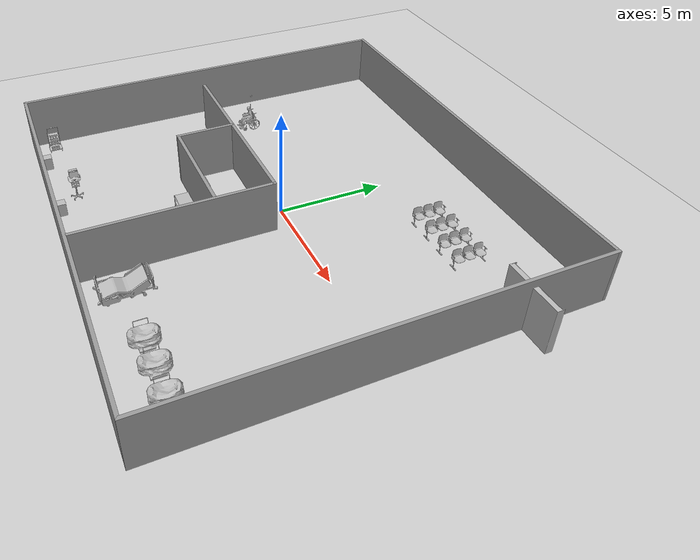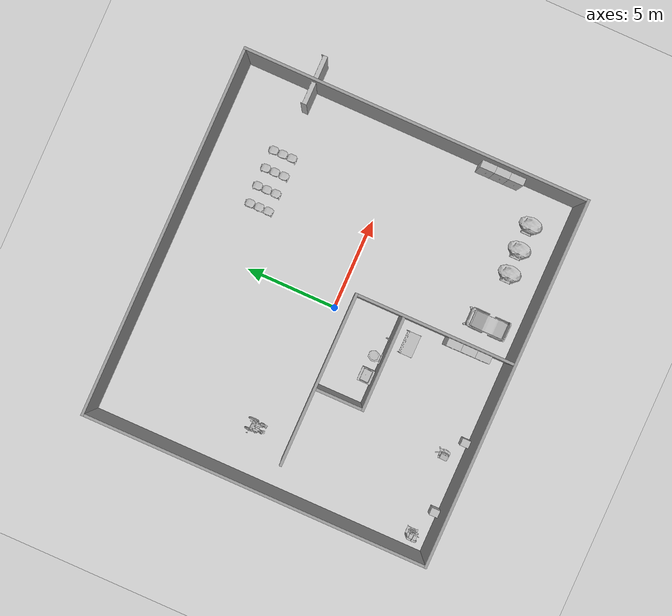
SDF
<sdf version="1.7">
 <world name="default">
  <light name="sun" type="directional">
   <pose>0 0 10 0 -0 0</pose>
   <diffuse>0.8 0.8 0.8 1</diffuse>
   <specular>0.2 0.2 0.2 1</specular>
   <attenuation>
    <range>1000</range>
    <constant>0.9</constant>
    <linear>0.01</linear>
    <quadratic>0.001</quadratic>
   </attenuation>
   <direction>-0.5 0.1 -0.9</direction>
   <spot><inner_angle>0</inner_angle><outer_angle>0</outer_angle><falloff>0</falloff></spot>
  </light>
  <model name="ground_plane">
   <static>1</static>
   <link name="link">
    <collision name="collision">
     <geometry><plane><normal>0 0 1</normal><size>100 100</size></plane></geometry>
     <surface><friction><ode><mu>100</mu><mu2>50</mu2></ode></friction></surface>
    </collision>
    <visual name="visual">
     <cast_shadows>0</cast_shadows>
     <geometry><plane><normal>0 0 1</normal><size>100 100</size></plane></geometry>
     <material>
      <script><uri>file://media/materials/scripts/gazebo.material</uri><name>Gazebo/Grey</name></script>
     </material>
    </visual>
   </link>
  </model>
  <gravity>0 0 -9.8</gravity>
  <magnetic_field>6e-06 2.3e-05 -4.2e-05</magnetic_field>
  <atmosphere type="adiabatic"/>
  <physics type="ode">
   <max_step_size>0.001</max_step_size>
   <real_time_factor>1</real_time_factor>
   <real_time_update_rate>1000</real_time_update_rate>
  </physics>
  <scene><ambient>0.4 0.4 0.4 1</ambient><background>0.7 0.7 0.7 1</background><shadows>1</shadows></scene>
  <audio><device>default</device></audio>
  <spherical_coordinates>
   <surface_model>EARTH_WGS84</surface_model>
   <latitude_deg>0</latitude_deg>
   <longitude_deg>0</longitude_deg>
   <elevation>0</elevation>
   <heading_deg>0</heading_deg>
  </spherical_coordinates>
  <model name="Untitled_0">
   <pose>0.023288 -0.048449 0 0 -0 0</pose>
   <link name="Wall_2">
    <collision name="Wall_2_Collision">
     <geometry><box><size>20.25 0.15 2.5</size></box></geometry>
     <pose>0 0 1.25 0 -0 0</pose>
    </collision>
    <visual name="Wall_2_Visual">
     <pose>0 0 1.25 0 -0 0</pose>
     <geometry><box><size>20.25 0.15 2.5</size></box></geometry>
     <material>
      <script><uri>file://media/materials/scripts/gazebo.material</uri><name>Gazebo/Grey</name></script>
      <ambient>1 1 1 1</ambient>
     </material>
     <meta><layer>0</layer></meta>
    </visual>
    <pose>-1e-06 -9.425 0 0 -0 0</pose>
   </link>
   <link name="Wall_3">
    <collision name="Wall_3_Collision">
     <geometry><box><size>19 0.15 2.5</size></box></geometry>
     <pose>0 0 1.25 0 -0 0</pose>
    </collision>
    <visual name="Wall_3_Visual">
     <pose>0 0 1.25 0 -0 0</pose>
     <geometry><box><size>19 0.15 2.5</size></box></geometry>
     <material>
      <script><uri>file://media/materials/scripts/gazebo.material</uri><name>Gazebo/Grey</name></script>
      <ambient>1 1 1 1</ambient>
     </material>
     <meta><layer>0</layer></meta>
    </visual>
    <pose>10.05 0 0 0 -0 1.5708</pose>
   </link>
   <link name="Wall_4">
    <collision name="Wall_4_Collision">
     <geometry><box><size>20.25 0.15 2.5</size></box></geometry>
     <pose>0 0 1.25 0 -0 0</pose>
    </collision>
    <visual name="Wall_4_Visual">
     <pose>0 0 1.25 0 -0 0</pose>
     <geometry><box><size>20.25 0.15 2.5</size></box></geometry>
     <material>
      <script><uri>file://media/materials/scripts/gazebo.material</uri><name>Gazebo/Grey</name></script>
      <ambient>1 1 1 1</ambient>
     </material>
     <meta><layer>0</layer></meta>
    </visual>
    <pose>-1e-06 9.425 0 0 -0 3.14159</pose>
   </link>
   <link name="Wall_5">
    <collision name="Wall_5_Collision">
     <geometry><box><size>19 0.15 2.5</size></box></geometry>
     <pose>0 0 1.25 0 -0 0</pose>
    </collision>
    <visual name="Wall_5_Visual">
     <pose>0 0 1.25 0 -0 0</pose>
     <geometry><box><size>19 0.15 2.5</size></box></geometry>
     <material>
      <script><uri>file://media/materials/scripts/gazebo.material</uri><name>Gazebo/Grey</name></script>
      <ambient>1 1 1 1</ambient>
     </material>
     <meta><layer>0</layer></meta>
    </visual>
    <pose>-10.05 0 0 0 -0 -1.5708</pose>
   </link>
   <static>1</static>
  </model>
  <model name="Untitled_2">
   <pose>-3.20174 0.770051 0 0 -0 0</pose>
   <link name="Wall_15">
    <collision name="Wall_15_Collision">
     <geometry><box><size>9.5 0.15 2.5</size></box></geometry>
     <pose>0 0 1.25 0 -0 0</pose>
    </collision>
    <visual name="Wall_15_Visual">
     <pose>0 0 1.25 0 -0 0</pose>
     <geometry><box><size>9.5 0.15 2.5</size></box></geometry>
     <material>
      <script><uri>file://media/materials/scripts/gazebo.material</uri><name>Gazebo/Grey</name></script>
      <ambient>1 1 1 1</ambient>
     </material>
     <meta><layer>0</layer></meta>
    </visual>
    <pose>-0.418404 -1.51778 0 0 -0 0</pose>
   </link>
   <link name="Wall_16">
    <collision name="Wall_16_Collision">
     <geometry><box><size>8.75 0.15 2.5</size></box></geometry>
     <pose>0 0 1.25 0 -0 0</pose>
    </collision>
    <visual name="Wall_16_Visual">
     <pose>0 0 1.25 0 -0 0</pose>
     <geometry><box><size>8.75 0.15 2.5</size></box></geometry>
     <material>
      <script><uri>file://media/materials/scripts/gazebo.material</uri><name>Gazebo/Grey</name></script>
      <ambient>1 1 1 1</ambient>
     </material>
     <meta><layer>0</layer></meta>
    </visual>
    <pose>4.2566 -5.81778 0 0 -0 -1.5708</pose>
   </link>
   <static>1</static>
  </model>
  <model name="OfficeChairBlue">
   <static>1</static>
   <link name="body">
    <visual name="visual"><geometry><mesh><uri>model://Drawer/meshes/Drawer.obj</uri></mesh></geometry></visual>
    <collision name="collision">
     <geometry><mesh><uri>model://Drawer/meshes/Drawer.obj</uri></mesh></geometry>
    </collision>
   </link>
   <pose>-3.70339 -9.17503 0 0 0 -3.13905</pose>
  </model>
  <model name="OfficeChairBlue_clone">
   <static>1</static>
   <link name="body">
    <visual name="visual"><geometry><mesh><uri>model://Drawer/meshes/Drawer.obj</uri></mesh></geometry></visual>
    <collision name="collision">
     <geometry><mesh><uri>model://Drawer/meshes/Drawer.obj</uri></mesh></geometry>
    </collision>
   </link>
   <pose>-7.67762 -9.16662 0 0 0 -3.13905</pose>
  </model>
  <model name="Untitled_3">
   <pose>-8.59786 -3.32814 0 0 0 -3.13964</pose>
   <link name="Wall_18">
    <collision name="Wall_18_Collision">
     <geometry><box><size>5.25 0.15 2.5</size></box></geometry>
     <pose>0 0 1.25 0 -0 0</pose>
    </collision>
    <visual name="Wall_18_Visual">
     <pose>0 0 1.25 0 -0 0</pose>
     <geometry><box><size>5.25 0.15 2.5</size></box></geometry>
     <material>
      <script><uri>file://media/materials/scripts/gazebo.material</uri><name>Gazebo/Grey</name></script>
      <ambient>1 1 1 1</ambient>
     </material>
     <meta><layer>0</layer></meta>
    </visual>
    <pose>-7.03839 0.077246 0 0 -0 0</pose>
   </link>
   <link name="Wall_19">
    <collision name="Wall_19_Collision">
     <geometry><box><size>2.75 0.15 2.5</size></box></geometry>
     <pose>0 0 1.25 0 -0 0</pose>
    </collision>
    <visual name="Wall_19_Visual">
     <pose>0 0 1.25 0 -0 0</pose>
     <geometry><box><size>2.75 0.15 2.5</size></box></geometry>
     <material>
      <script><uri>file://media/materials/scripts/gazebo.material</uri><name>Gazebo/Grey</name></script>
      <ambient>1 1 1 1</ambient>
     </material>
     <meta><layer>0</layer></meta>
    </visual>
    <pose>-4.48839 -1.22275 0 0 -0 -1.5708</pose>
   </link>
   <static>1</static>
  </model>
  <model name="Toilet">
   <link name="body">
    <visual name="visual">
     <geometry><mesh><uri>model://Toilet/meshes/toilet.obj</uri><scale>1.75 1.75 1.75</scale></mesh></geometry>
    </visual>
    <collision name="collision">
     <geometry><mesh><uri>model://Toilet/meshes/toilet.obj</uri><scale>1.75 1.75 1.75</scale></mesh></geometry>
    </collision>
    <inertial>
     <inertia><ixx>1</ixx><ixy>0</ixy><ixz>0</ixz><iyy>1</iyy><iyz>0</iyz><izz>1</izz></inertia>
     <mass>1</mass>
    </inertial>
   </link>
   <pose>-1.48494 -2.94966 0 0 -0 1.574</pose>
  </model>
  <model name="KitchenSink">
   <link name="link">
    <visual name="visual">
     <geometry><mesh><uri>model://KitchenSink/meshes/kitchenSink.obj</uri></mesh></geometry>
    </visual>
    <collision name="collision">
     <geometry><mesh><uri>model://KitchenSink/meshes/kitchenSink.obj</uri></mesh></geometry>
    </collision>
    <inertial>
     <inertia><ixx>1</ixx><ixy>0</ixy><ixz>0</ixz><iyy>1</iyy><iyz>0</iyz><izz>1</izz></inertia>
     <mass>1</mass>
    </inertial>
   </link>
   <pose>-2.57114 -3.02244 0 0 -0 1.56189</pose>
  </model>
  <model name="Shower">
   <static>1</static>
   <link name="body">
    <visual name="visual">
     <geometry><mesh><uri>model://Shower/meshes/Shower.obj</uri><scale>1 1 1</scale></mesh></geometry>
    </visual>
    <collision name="collision">
     <geometry><mesh><uri>model://Shower/meshes/Shower.obj</uri><scale>1 1 1</scale></mesh></geometry>
    </collision>
   </link>
   <pose>-0.373448 -3.21162 0 0 0 -1.57047</pose>
  </model>
  <model name="StorageRack">
   <link name="link">
    <visual name="visual">
     <geometry><mesh><uri>model://StorageRack/meshes/StorageRack.obj</uri></mesh></geometry>
    </visual>
    <collision name="collision">
     <geometry><mesh><uri>model://StorageRack/meshes/StorageRack.obj</uri></mesh></geometry>
    </collision>
    <inertial>
     <inertia><ixx>1</ixx><ixy>0</ixy><ixz>0</ixz><iyy>1</iyy><iyz>0</iyz><izz>1</izz></inertia>
     <mass>1</mass>
    </inertial>
   </link>
   <pose>-0.142079 -4.3321 0 0 -0 0</pose>
  </model>
  <model name="WhiteChipChair">
   <static>1</static>
   <link name="body">
    <visual name="visual">
     <geometry><mesh><uri>model://WhiteChipChair/meshes/WhiteChipChair.obj</uri></mesh></geometry>
    </visual>
    <collision name="collision">
     <geometry><mesh><uri>model://WhiteChipChair/meshes/WhiteChipChair_Col.obj</uri></mesh></geometry>
    </collision>
   </link>
   <pose>5.19135 5.76129 0 0 -0 0</pose>
  </model>
  <model name="WhiteChipChair_clone">
   <static>1</static>
   <link name="body">
    <visual name="visual">
     <geometry><mesh><uri>model://WhiteChipChair/meshes/WhiteChipChair.obj</uri></mesh></geometry>
    </visual>
    <collision name="collision">
     <geometry><mesh><uri>model://WhiteChipChair/meshes/WhiteChipChair_Col.obj</uri></mesh></geometry>
    </collision>
   </link>
   <pose>4.17469 5.77041 0 0 -0 0</pose>
  </model>
  <model name="WhiteChipChair_clone_0">
   <static>1</static>
   <link name="body">
    <visual name="visual">
     <geometry><mesh><uri>model://WhiteChipChair/meshes/WhiteChipChair.obj</uri></mesh></geometry>
    </visual>
    <collision name="collision">
     <geometry><mesh><uri>model://WhiteChipChair/meshes/WhiteChipChair_Col.obj</uri></mesh></geometry>
    </collision>
   </link>
   <pose>3.17143 5.76411 0 0 -0 0</pose>
  </model>
  <model name="WhiteChipChair_clone_1">
   <static>1</static>
   <link name="body">
    <visual name="visual">
     <geometry><mesh><uri>model://WhiteChipChair/meshes/WhiteChipChair.obj</uri></mesh></geometry>
    </visual>
    <collision name="collision">
     <geometry><mesh><uri>model://WhiteChipChair/meshes/WhiteChipChair_Col.obj</uri></mesh></geometry>
    </collision>
   </link>
   <pose>6.21751 5.7557 0 0 -0 0</pose>
  </model>
  <model name="ParkingTrolleyMax">
   <link name="body">
    <visual name="visual">
     <geometry><mesh><uri>model://ParkingTrolleyMax/meshes/ParkingTrolleyMax.obj</uri></mesh></geometry>
    </visual>
    <collision name="collision">
     <geometry><mesh><uri>model://ParkingTrolleyMax/meshes/ParkingTrolleyMax.obj</uri></mesh></geometry>
    </collision>
    <inertial>
     <inertia><ixx>1</ixx><ixy>0</ixy><ixz>0</ixz><iyy>1</iyy><iyz>0</iyz><izz>1</izz></inertia>
     <mass>1</mass>
    </inertial>
   </link>
   <pose>8.1035 -7.66319 0 0 -0 0</pose>
  </model>
  <model name="ParkingTrolleyMax_clone">
   <link name="body">
    <visual name="visual">
     <geometry><mesh><uri>model://ParkingTrolleyMax/meshes/ParkingTrolleyMax.obj</uri></mesh></geometry>
    </visual>
    <collision name="collision">
     <geometry><mesh><uri>model://ParkingTrolleyMax/meshes/ParkingTrolleyMax.obj</uri></mesh></geometry>
    </collision>
    <inertial>
     <inertia><ixx>1</ixx><ixy>0</ixy><ixz>0</ixz><iyy>1</iyy><iyz>0</iyz><izz>1</izz></inertia>
     <mass>1</mass>
    </inertial>
   </link>
   <pose>6.69365 -7.64688 0 0 -0 0</pose>
  </model>
  <model name="ParkingTrolleyMax_clone_0">
   <link name="body">
    <visual name="visual">
     <geometry><mesh><uri>model://ParkingTrolleyMax/meshes/ParkingTrolleyMax.obj</uri></mesh></geometry>
    </visual>
    <collision name="collision">
     <geometry><mesh><uri>model://ParkingTrolleyMax/meshes/ParkingTrolleyMax.obj</uri></mesh></geometry>
    </collision>
    <inertial>
     <inertia><ixx>1</ixx><ixy>0</ixy><ixz>0</ixz><iyy>1</iyy><iyz>0</iyz><izz>1</izz></inertia>
     <mass>1</mass>
    </inertial>
   </link>
   <pose>5.34518 -7.68165 0 0 -0 0</pose>
  </model>
  <model name="InstrumentCart1">
   <static>1</static>
   <link name="body">
    <visual name="visual">
     <geometry><mesh><uri>model://InstrumentCart1/meshes/InstrumentCart1.obj</uri></mesh></geometry>
    </visual>
    <collision name="collision">
     <geometry><mesh><uri>model://InstrumentCart1/meshes/InstrumentCart1.obj</uri></mesh></geometry>
    </collision>
   </link>
   <pose>-9.213 -8.54212 0 0 -0 1.57488</pose>
  </model>
  <model name="BPCart">
   <link name="body">
    <visual name="visual"><geometry><mesh><uri>model://BPCart/meshes/Cart_BP.obj</uri></mesh></geometry></visual>
    <collision name="collision">
     <geometry><mesh><uri>model://BPCart/meshes/Cart_BP_Col.obj</uri></mesh></geometry>
    </collision>
    <inertial>
     <inertia><ixx>1</ixx><ixy>0</ixy><ixz>0</ixz><iyy>1</iyy><iyz>0</iyz><izz>1</izz></inertia>
     <mass>1</mass>
    </inertial>
   </link>
   <pose>-4.63708 -8.27897 0 0 -0 1.55225</pose>
  </model>
  <model name="CGMClassic">
   <static>1</static>
   <link name="body">
    <visual name="visual">
     <geometry>
      <mesh><uri>model://CGMClassic/meshes/CGMClassic.obj</uri><scale>0.01 0.01 0.01</scale></mesh>
     </geometry>
    </visual>
    <collision name="collision">
     <geometry>
      <mesh><uri>model://CGMClassic/meshes/CGMClassic.obj</uri><scale>0.01 0.01 0.01</scale></mesh>
     </geometry>
    </collision>
   </link>
   <pose>2.4726 -7.66554 0 0 -0 0</pose>
  </model>
  <model name="MetalCabinet">
   <static>1</static>
   <link name="body">
    <visual name="visual">
     <geometry><mesh><uri>model://MetalCabinet/meshes/MetalCabinet.obj</uri></mesh></geometry>
    </visual>
    <collision name="collision">
     <geometry><mesh><uri>model://MetalCabinet/meshes/MetalCabinet.obj</uri></mesh></geometry>
    </collision>
   </link>
   <pose>9.81077 -4.28915 0 0 0 -1.56428</pose>
  </model>
  <model name="MetalCabinet_clone">
   <static>1</static>
   <link name="body">
    <visual name="visual">
     <geometry><mesh><uri>model://MetalCabinet/meshes/MetalCabinet.obj</uri></mesh></geometry>
    </visual>
    <collision name="collision">
     <geometry><mesh><uri>model://MetalCabinet/meshes/MetalCabinet.obj</uri></mesh></geometry>
    </collision>
   </link>
   <pose>9.81019 -5.09055 0 0 0 -1.56428</pose>
  </model>
  <model name="MetalCabinet_clone_0">
   <static>1</static>
   <link name="body">
    <visual name="visual">
     <geometry><mesh><uri>model://MetalCabinet/meshes/MetalCabinet.obj</uri></mesh></geometry>
    </visual>
    <collision name="collision">
     <geometry><mesh><uri>model://MetalCabinet/meshes/MetalCabinet.obj</uri></mesh></geometry>
    </collision>
   </link>
   <pose>9.81308 -5.89456 0 0 0 -1.56428</pose>
  </model>
  <model name="PatientWheelChair">
   <static>1</static>
   <link name="body">
    <visual name="visual">
     <geometry><mesh><uri>model://PatientWheelChair/meshes/PatientWheelChair.obj</uri></mesh></geometry>
    </visual>
    <collision name="collision">
     <geometry><mesh><uri>model://PatientWheelChair/meshes/PatientWheelChair_Col.obj</uri></mesh></geometry>
    </collision>
   </link>
   <pose>-7.38369 1.22623 0 0 -0 0</pose>
  </model>
  <model name="aws_robomaker_retail_BookshelfB_01">
   <link name="link">
    <inertial>
     <mass>50</mass>
     <inertia><ixx>19.8742</ixx><ixy>0</ixy><ixz>0</ixz><iyy>49.1263</iyy><iyz>0</iyz><izz>30.2231</izz></inertia>
    </inertial>
    <collision name="collision">
     <geometry>
      <mesh>
       <uri>file://models/aws_robomaker_retail_BookshelfB_01/meshes/aws_BookshelfB_01_collision.DAE</uri>
       <scale>1 1 1</scale>
      </mesh>
     </geometry>
    </collision>
    <visual name="visual">
     <geometry>
      <mesh><uri>file://models/aws_robomaker_retail_BookshelfB_01/meshes/aws_BookshelfB_01_visual.DAE</uri></mesh>
     </geometry>
     <meta><layer>1</layer></meta>
    </visual>
   </link>
   <static>1</static>
   <pose>10.1125 5.61851 0 0 -0 0</pose>
  </model>
  <model name="MetalCabinet_clone_1">
   <static>1</static>
   <link name="body">
    <visual name="visual">
     <geometry><mesh><uri>model://MetalCabinet/meshes/MetalCabinet.obj</uri></mesh></geometry>
    </visual>
    <collision name="collision">
     <geometry><mesh><uri>model://MetalCabinet/meshes/MetalCabinet.obj</uri></mesh></geometry>
    </collision>
   </link>
   <pose>0.760736 -6.39887 0 0 0 -1.56428</pose>
  </model>
  <model name="MetalCabinet_clone_2">
   <static>1</static>
   <link name="body">
    <visual name="visual">
     <geometry><mesh><uri>model://MetalCabinet/meshes/MetalCabinet.obj</uri></mesh></geometry>
    </visual>
    <collision name="collision">
     <geometry><mesh><uri>model://MetalCabinet/meshes/MetalCabinet.obj</uri></mesh></geometry>
    </collision>
   </link>
   <pose>0.767623 -7.20714 0 0 0 -1.56428</pose>
  </model>
  <model name="MetalCabinet_clone_3">
   <static>1</static>
   <link name="body">
    <visual name="visual">
     <geometry><mesh><uri>model://MetalCabinet/meshes/MetalCabinet.obj</uri></mesh></geometry>
    </visual>
    <collision name="collision">
     <geometry><mesh><uri>model://MetalCabinet/meshes/MetalCabinet.obj</uri></mesh></geometry>
    </collision>
   </link>
   <pose>0.774563 -8.01294 0 0 0 -1.56428</pose>
  </model>
 </world>
</sdf>
